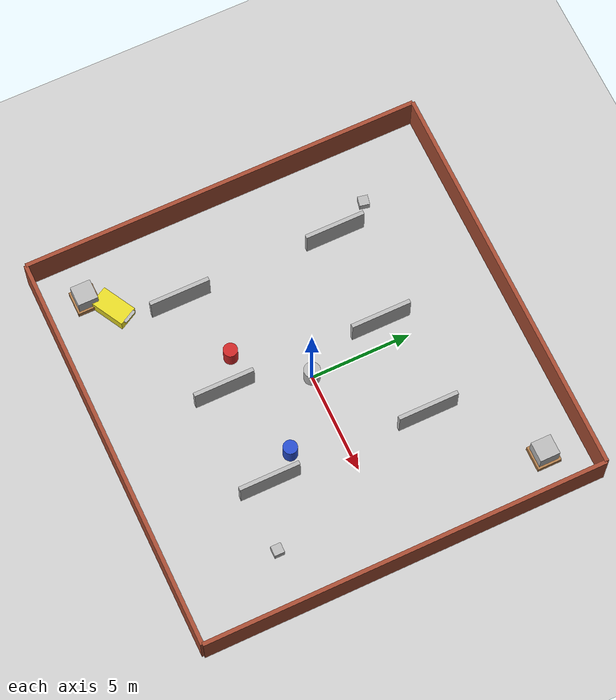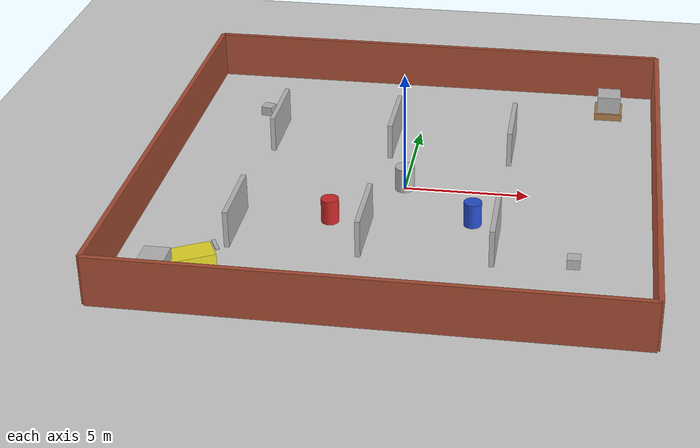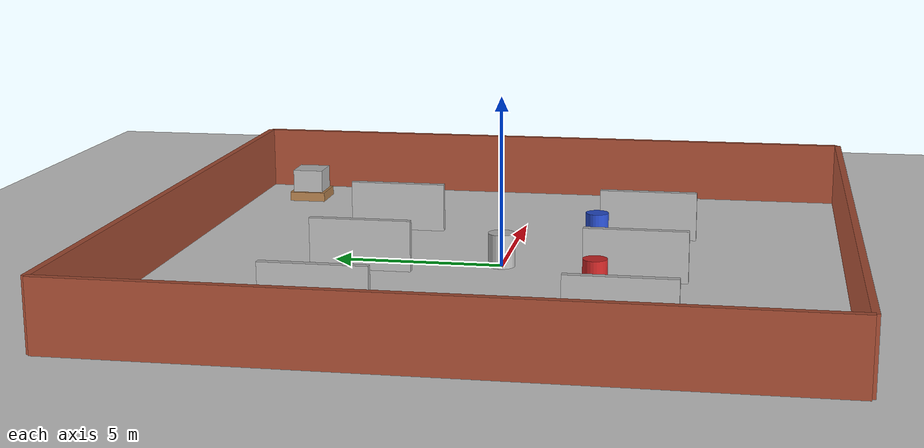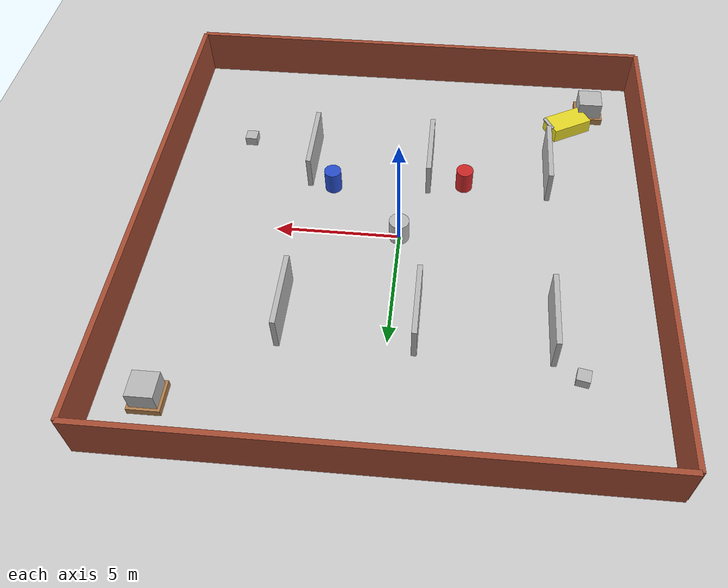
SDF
<sdf version='1.6'>
  <world name='warehouse_recognizable'>
    <light name='sun' type='directional'>
      <cast_shadows>1</cast_shadows>
      <pose>0 0 10 0 0 0</pose>
      <diffuse>0.8 0.8 0.8 1</diffuse>
      <specular>0.2 0.2 0.2 1</specular>
      <attenuation>
        <range>1000</range>
        <constant>0.9</constant>
        <linear>0.01</linear>
        <quadratic>0.001</quadratic>
      </attenuation>
      <direction>-0.5 0.5 -1</direction>
    </light>

    <model name='ground_plane'>
      <static>1</static>
      <link name='link'>
        <collision name='collision'>
          <geometry><plane><normal>0 0 1</normal><size>100 100</size></plane></geometry>
          <surface><friction><ode><mu>100</mu><mu2>50</mu2></ode></friction><contact><ode/></contact></surface>
        </collision>
        <visual name='visual'>
          <cast_shadows>0</cast_shadows>
          <geometry><plane><normal>0 0 1</normal><size>100 100</size></plane></geometry>
          <material><script><uri>file://media/materials/scripts/gazebo.material</uri><name>Gazebo/Grey</name></script></material>
        </visual>
      </link>
    </model>

    <gravity>0 0 -9.8</gravity>
    <physics name='default_physics' default='0' type='ode'>
      <max_step_size>0.001</max_step_size>
      <real_time_factor>1</real_time_factor>
      <real_time_update_rate>1000</real_time_update_rate>
    </physics>

    <scene>
      <ambient>0.4 0.4 0.4 1</ambient>
      <background>0.7 0.7 0.7 1</background>
      <shadows>1</shadows>
    </scene>

    <!-- Tường ngoài 20x20 -->
    <model name='outer_walls'>
      <static>1</static>
      <pose>0 0 0 0 0 0</pose>
      <link name='Wall_North'><pose>0 10 1 0 0 0</pose>
        <visual name='visual'><geometry><box><size>20 0.2 2</size></box></geometry><material><script><uri>file://media/materials/scripts/gazebo.material</uri><name>Gazebo/Bricks</name></script></material></visual>
        <collision name='collision'><geometry><box><size>20 0.2 2</size></box></geometry></collision>
      </link>
      <link name='Wall_South'><pose>0 -10 1 0 0 3.14159</pose>
        <visual name='visual'><geometry><box><size>20 0.2 2</size></box></geometry><material><script><uri>file://media/materials/scripts/gazebo.material</uri><name>Gazebo/Bricks</name></script></material></visual>
        <collision name='collision'><geometry><box><size>20 0.2 2</size></box></geometry></collision>
      </link>
      <link name='Wall_East'><pose>10 0 1 0 0 -1.5708</pose>
        <visual name='visual'><geometry><box><size>20 0.2 2</size></box></geometry><material><script><uri>file://media/materials/scripts/gazebo.material</uri><name>Gazebo/Bricks</name></script></material></visual>
        <collision name='collision'><geometry><box><size>20 0.2 2</size></box></geometry></collision>
      </link>
      <link name='Wall_West'><pose>-10 0 1 0 0 1.5708</pose>
        <visual name='visual'><geometry><box><size>20 0.2 2</size></box></geometry><material><script><uri>file://media/materials/scripts/gazebo.material</uri><name>Gazebo/Bricks</name></script></material></visual>
        <collision name='collision'><geometry><box><size>20 0.2 2</size></box></geometry></collision>
      </link>
    </model>

    <!-- 2 dãy kệ hàng (mỗi dãy 3 kệ) -->
    <model name='rack_A1'><static>1</static><pose>-6 4 0.75 0 0 0</pose><link name='link'><visual name='visual'><geometry><box><size>0.2 3 1.5</size></box></geometry><material><script><uri>file://media/materials/scripts/gazebo.material</uri><name>Gazebo/MetalTreadPlate</name></script></material></visual><collision name='collision'><geometry><box><size>0.2 3 1.5</size></box></geometry></collision></link></model>
    <model name='rack_A2'><static>1</static><pose>-1 4 0.75 0 0 0</pose><link name='link'><visual name='visual'><geometry><box><size>0.2 3 1.5</size></box></geometry><material><script><uri>file://media/materials/scripts/gazebo.material</uri><name>Gazebo/MetalTreadPlate</name></script></material></visual><collision name='collision'><geometry><box><size>0.2 3 1.5</size></box></geometry></collision></link></model>
    <model name='rack_A3'><static>1</static><pose>4 4 0.75 0 0 0</pose><link name='link'><visual name='visual'><geometry><box><size>0.2 3 1.5</size></box></geometry><material><script><uri>file://media/materials/scripts/gazebo.material</uri><name>Gazebo/MetalTreadPlate</name></script></material></visual><collision name='collision'><geometry><box><size>0.2 3 1.5</size></box></geometry></collision></link></model>

    <model name='rack_B1'><static>1</static><pose>-6 -4 0.75 0 0 0</pose><link name='link'><visual name='visual'><geometry><box><size>0.2 3 1.5</size></box></geometry><material><script><uri>file://media/materials/scripts/gazebo.material</uri><name>Gazebo/MetalTreadPlate</name></script></material></visual><collision name='collision'><geometry><box><size>0.2 3 1.5</size></box></geometry></collision></link></model>
    <model name='rack_B2'><static>1</static><pose>-1 -4 0.75 0 0 0</pose><link name='link'><visual name='visual'><geometry><box><size>0.2 3 1.5</size></box></geometry><material><script><uri>file://media/materials/scripts/gazebo.material</uri><name>Gazebo/MetalTreadPlate</name></script></material></visual><collision name='collision'><geometry><box><size>0.2 3 1.5</size></box></geometry></collision></link></model>
    <model name='rack_B3'><static>1</static><pose>4 -4 0.75 0 0 0</pose><link name='link'><visual name='visual'><geometry><box><size>0.2 3 1.5</size></box></geometry><material><script><uri>file://media/materials/scripts/gazebo.material</uri><name>Gazebo/MetalTreadPlate</name></script></material></visual><collision name='collision'><geometry><box><size>0.2 3 1.5</size></box></geometry></collision></link></model>

    <!-- Pallet + thùng hàng (2 góc) -->
    <model name='pallet_left'>
      <static>1</static><pose>-8 -8 0.15 0 0 0</pose>
      <link name='link'><visual name='visual'><geometry><box><size>1.2 1.2 0.3</size></box></geometry><material><script><uri>file://media/materials/scripts/gazebo.material</uri><name>Gazebo/Wood</name></script></material></visual><collision name='collision'><geometry><box><size>1.2 1.2 0.3</size></box></geometry></collision></link>
    </model>
    <model name='box_left'>
      <static>1</static><pose>-8 -8 0.65 0 0 0</pose>
      <link name='link'><visual name='visual'><geometry><box><size>1.0 1.0 0.8</size></box></geometry><material><script><uri>file://media/materials/scripts/gazebo.material</uri><name>Gazebo/Cardboard</name></script></material></visual><collision name='collision'><geometry><box><size>1.0 1.0 0.8</size></box></geometry></collision></link>
    </model>

    <model name='pallet_right'>
      <static>1</static><pose>8 8 0.15 0 0 0</pose>
      <link name='link'><visual name='visual'><geometry><box><size>1.2 1.2 0.3</size></box></geometry><material><script><uri>file://media/materials/scripts/gazebo.material</uri><name>Gazebo/Wood</name></script></material></visual><collision name='collision'><geometry><box><size>1.2 1.2 0.3</size></box></geometry></collision></link>
    </model>
    <model name='box_right'>
      <static>1</static><pose>8 8 0.65 0 0 0</pose>
      <link name='link'><visual name='visual'><geometry><box><size>1.0 1.0 0.8</size></box></geometry><material><script><uri>file://media/materials/scripts/gazebo.material</uri><name>Gazebo/Cardboard</name></script></material></visual><collision name='collision'><geometry><box><size>1.0 1.0 0.8</size></box></geometry></collision></link>
    </model>

    <!-- Thùng phuy -->
    <model name='barrel'><static>1</static><pose>0 0 0.5 0 0 0</pose><link name='link'><visual name='visual'><geometry><cylinder><radius>0.4</radius><length>1</length></cylinder></geometry><material><script><uri>file://media/materials/scripts/gazebo.material</uri><name>Gazebo/Plastic</name></script></material></visual><collision name='collision'><geometry><cylinder><radius>0.4</radius><length>1</length></cylinder></geometry></collision></link></model>

    <!-- Xe nâng nhỏ -->
    <model name='forklift'>
      <static>1</static><pose>-7 -7 0 0 0 0.5</pose>
      <link name='body'><visual name='visual'><geometry><box><size>1.8 1 1.2</size></box></geometry><material><script><uri>file://media/materials/scripts/gazebo.material</uri><name>Gazebo/Yellow</name></script></material></visual><collision name='collision'><geometry><box><size>1.8 1 1.2</size></box></geometry></collision></link>
      <link name='fork'><pose>1.0 0 0.7 0 0 0</pose><visual name='visual'><geometry><box><size>0.15 0.7 0.05</size></box></geometry><material><script><uri>file://media/materials/scripts/gazebo.material</uri><name>Gazebo/MetalTreadPlate</name></script></material></visual><collision name='collision'><geometry><box><size>0.15 0.7 0.05</size></box></geometry></collision></link>
      <joint name='fork_joint' type='fixed'><parent>body</parent><child>fork</child></joint>
    </model>

    <!-- Một vài thùng carton nhỏ rải rác -->
    <model name='cardboard_1'><static>1</static><pose>7 -5 0.2 0 0 0</pose><link name='link'><visual name='visual'><geometry><box><size>0.5 0.5 0.4</size></box></geometry><material><script><uri>file://media/materials/scripts/gazebo.material</uri><name>Gazebo/Cardboard</name></script></material></visual><collision name='collision'><geometry><box><size>0.5 0.5 0.4</size></box></geometry></collision></link></model>
    <model name='cardboard_2'><static>1</static><pose>-7 6 0.2 0 0 -0.2</pose><link name='link'><visual name='visual'><geometry><box><size>0.5 0.5 0.4</size></box></geometry><material><script><uri>file://media/materials/scripts/gazebo.material</uri><name>Gazebo/Cardboard</name></script></material></visual><collision name='collision'><geometry><box><size>0.5 0.5 0.4</size></box></geometry></collision></link></model>

    <!-- ========== VẬT CẢN DI ĐỘNG (KHÔNG VA CHẠM NHAU) ========== -->
    <!-- Trụ đỏ: đi ngang trên y=-3, x từ -7 đến 2 -->
    <model name='moving_red'>
      <pose>-2.5 -3 0.5 0 0 0</pose>
      <link name='body'>
        <visual name='visual'><geometry><cylinder><radius>0.35</radius><length>1.0</length></cylinder></geometry><material><script><uri>file://media/materials/scripts/gazebo.material</uri><name>Gazebo/Red</name></script></material></visual>
        <collision name='collision'><geometry><cylinder><radius>0.35</radius><length>1.0</length></cylinder></geometry></collision>
      </link>
      <joint name='red_joint' type='prismatic'>
        <parent>world</parent><child>body</child>
        <axis><xyz>1 0 0</xyz></axis>
        <limit><lower>-7</lower><upper>2</upper></limit>
      </joint>
      <plugin name='red_mover' filename='librotating_wall_plugin.so'>
        <joint_name>red_joint</joint_name>
        <amplitude>4.5</amplitude>
        <speed>0.3</speed>
      </plugin>
    </model>

    <!-- Trụ xanh: đi dọc trên x=3, y từ -7 đến 2 -->
    <model name='moving_blue'>
      <pose>3 -2.5 0.5 0 0 0</pose>
      <link name='body'>
        <visual name='visual'><geometry><cylinder><radius>0.35</radius><length>1.0</length></cylinder></geometry><material><script><uri>file://media/materials/scripts/gazebo.material</uri><name>Gazebo/Blue</name></script></material></visual>
        <collision name='collision'><geometry><cylinder><radius>0.35</radius><length>1.0</length></cylinder></geometry></collision>
      </link>
      <joint name='blue_joint' type='prismatic'>
        <parent>world</parent><child>body</child>
        <axis><xyz>0 1 0</xyz></axis>
        <limit><lower>-7</lower><upper>2</upper></limit>
      </joint>
      <plugin name='blue_mover' filename='librotating_wall_plugin.so'>
        <joint_name>blue_joint</joint_name>
        <amplitude>4.5</amplitude>
        <speed>0.3</speed>
      </plugin>
    </model>

  </world>
</sdf>
